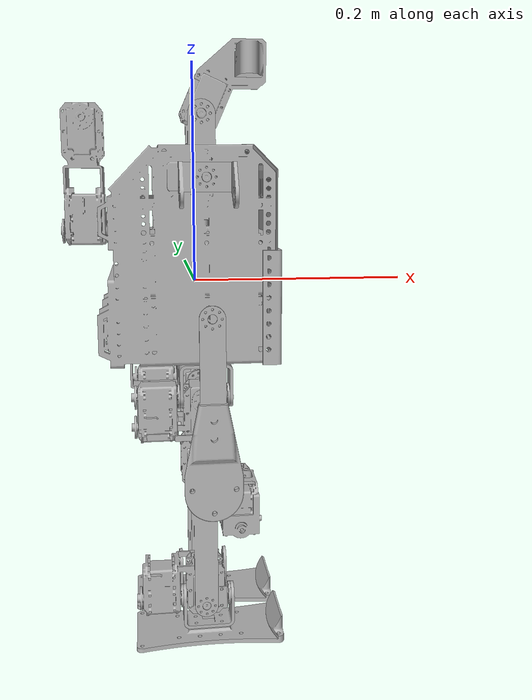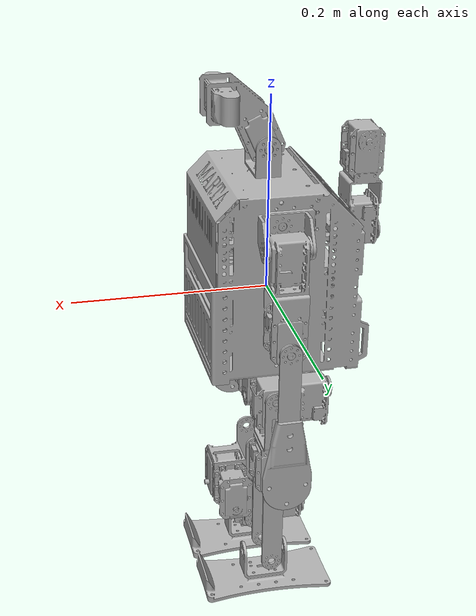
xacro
<?xml version="1.0" ?>
<robot name="martha" xmlns:xacro="http://www.ros.org/wiki/xacro">

<xacro:include filename="$(find martha_description)/urdf/materials.xacro" />
<xacro:include filename="$(find martha_description)/urdf/martha.trans" />
<xacro:include filename="$(find martha_description)/urdf/martha.gazebo" />
<xacro:include filename="$(find martha_description)/urdf/camera.xacro" />
<xacro:include filename="$(find martha_description)/urdf/IMU.xacro" />

<link name="base_link">
  <inertial>
    <origin xyz="-0.0006630369776697198 -0.009768004657093142 0.08921407799120112" rpy="0 0 0"/>
    <mass value="1.7871284905258538"/>
    <inertia ixx="0.008986" iyy="0.009333" izz="0.005235" ixy="0.000105" iyz="9.3e-05" ixz="-8.4e-05"/>
  </inertial>
  <visual>
    <origin xyz="0 0 0" rpy="0 0 0"/>
    <geometry>
      <mesh filename="package://martha_description/meshes/base_link.stl" scale="0.001 0.001 0.001"/>
    </geometry>
    <material name="silver"/>
  </visual>
  <collision>
    <origin xyz="0 0 0" rpy="0 0 0"/>
    <geometry>
      <mesh filename="package://martha_description/meshes/base_link.stl" scale="0.001 0.001 0.001"/>
    </geometry>
  </collision>
</link>

<link name="r_shoulder_1">
  <inertial>
    <origin xyz="-0.01031281894625595 1.006563130415139e-07 -0.003392181082860851" rpy="0 0 0"/>
    <mass value="0.06160861853585967"/>
    <inertia ixx="2.9e-05" iyy="1.1e-05" izz="2.9e-05" ixy="-0.0" iyz="0.0" ixz="-2e-06"/>
  </inertial>
  <visual>
    <origin xyz="0.075737 0.013299 -0.16273" rpy="0 0 0"/>
    <geometry>
      <mesh filename="package://martha_description/meshes/r_shoulder_1.stl" scale="0.001 0.001 0.001"/>
    </geometry>
    <material name="silver"/>
  </visual>
  <collision>
    <origin xyz="0.075737 0.013299 -0.16273" rpy="0 0 0"/>
    <geometry>
      <mesh filename="package://martha_description/meshes/r_shoulder_1.stl" scale="0.001 0.001 0.001"/>
    </geometry>
  </collision>
</link>

<link name="l_shoulder_1">
  <inertial>
    <origin xyz="0.010312334877242826 1.0065631233721617e-07 -0.003392181082860518" rpy="0 0 0"/>
    <mass value="0.06160861853585967"/>
    <inertia ixx="2.9e-05" iyy="1.1e-05" izz="2.9e-05" ixy="-0.0" iyz="-0.0" ixz="2e-06"/>
  </inertial>
  <visual>
    <origin xyz="-0.075763 0.013299 -0.16273" rpy="0 0 0"/>
    <geometry>
      <mesh filename="package://martha_description/meshes/l_shoulder_1.stl" scale="0.001 0.001 0.001"/>
    </geometry>
    <material name="silver"/>
  </visual>
  <collision>
    <origin xyz="-0.075763 0.013299 -0.16273" rpy="0 0 0"/>
    <geometry>
      <mesh filename="package://martha_description/meshes/l_shoulder_1.stl" scale="0.001 0.001 0.001"/>
    </geometry>
  </collision>
</link>

<link name="r_arm_1">
  <inertial>
    <origin xyz="1.9347228869107114e-05 -0.020734437734457503 -0.04912725845579294" rpy="0 0 0"/>
    <mass value="0.2020617023521814"/>
    <inertia ixx="0.000302" iyy="0.000302" izz="3.9e-05" ixy="0.0" iyz="-1e-06" ixz="1e-06"/>
  </inertial>
  <visual>
    <origin xyz="0.098737 -0.007701 -0.14823" rpy="0 0 0"/>
    <geometry>
      <mesh filename="package://martha_description/meshes/r_arm_1.stl" scale="0.001 0.001 0.001"/>
    </geometry>
    <material name="silver"/>
  </visual>
  <collision>
    <origin xyz="0.098737 -0.007701 -0.14823" rpy="0 0 0"/>
    <geometry>
      <mesh filename="package://martha_description/meshes/r_arm_1.stl" scale="0.001 0.001 0.001"/>
    </geometry>
  </collision>
</link>

<link name="l_arm_1">
  <inertial>
    <origin xyz="1.934722886826057e-05 -0.020734437734458534 -0.049127258455792466" rpy="0 0 0"/>
    <mass value="0.2020617023521814"/>
    <inertia ixx="0.000302" iyy="0.000302" izz="3.9e-05" ixy="0.0" iyz="-1e-06" ixz="1e-06"/>
  </inertial>
  <visual>
    <origin xyz="-0.098763 -0.007701 -0.14823" rpy="0 0 0"/>
    <geometry>
      <mesh filename="package://martha_description/meshes/l_arm_1.stl" scale="0.001 0.001 0.001"/>
    </geometry>
    <material name="silver"/>
  </visual>
  <collision>
    <origin xyz="-0.098763 -0.007701 -0.14823" rpy="0 0 0"/>
    <geometry>
      <mesh filename="package://martha_description/meshes/l_arm_1.stl" scale="0.001 0.001 0.001"/>
    </geometry>
  </collision>
</link>

<link name="neck_1">
  <inertial>
    <origin xyz="-2.5755466409639717e-07 1.0065631294436939e-07 0.011845617124302071" rpy="0 0 0"/>
    <mass value="0.020000175779140178"/>
    <inertia ixx="4e-06" iyy="1e-05" izz="8e-06" ixy="-0.0" iyz="-0.0" ixz="-0.0"/>
  </inertial>
  <visual>
    <origin xyz="-1.3e-05 0.013499 -0.191301" rpy="0 0 0"/>
    <geometry>
      <mesh filename="package://martha_description/meshes/neck_1.stl" scale="0.001 0.001 0.001"/>
    </geometry>
    <material name="silver"/>
  </visual>
  <collision>
    <origin xyz="-1.3e-05 0.013499 -0.191301" rpy="0 0 0"/>
    <geometry>
      <mesh filename="package://martha_description/meshes/neck_1.stl" scale="0.001 0.001 0.001"/>
    </geometry>
  </collision>
</link>

<link name="head_1">
  <inertial>
    <origin xyz="-0.020725854293897734 -0.023195347929327943 0.027449395978563967" rpy="0 0 0"/>
    <mass value="0.16224455137688537"/>
    <inertia ixx="0.000142" iyy="0.000129" izz="0.000132" ixy="-0.0" iyz="6e-05" ixz="0.0"/>
  </inertial>
  <visual>
    <origin xyz="-0.021013 0.013499 -0.220301" rpy="0 0 0"/>
    <geometry>
      <mesh filename="package://martha_description/meshes/head_1.stl" scale="0.001 0.001 0.001"/>
    </geometry>
    <material name="silver"/>
  </visual>
  <collision>
    <origin xyz="-0.021013 0.013499 -0.220301" rpy="0 0 0"/>
    <geometry>
      <mesh filename="package://martha_description/meshes/head_1.stl" scale="0.001 0.001 0.001"/>
    </geometry>
  </collision>
</link>

<link name="l_hand_1">
  <inertial>
    <origin xyz="0.0009997579654939942 1.0065629232024198e-07 -0.05155814136788923" rpy="0 0 0"/>
    <mass value="0.021001330912574206"/>
    <inertia ixx="2.4e-05" iyy="2.3e-05" izz="1e-06" ixy="0.0" iyz="0.0" ixz="0.0"/>
  </inertial>
  <visual>
    <origin xyz="-0.119513 0.013059 -0.04863" rpy="0 0 0"/>
    <geometry>
      <mesh filename="package://martha_description/meshes/l_hand_1.stl" scale="0.001 0.001 0.001"/>
    </geometry>
    <material name="silver"/>
  </visual>
  <collision>
    <origin xyz="-0.119513 0.013059 -0.04863" rpy="0 0 0"/>
    <geometry>
      <mesh filename="package://martha_description/meshes/l_hand_1.stl" scale="0.001 0.001 0.001"/>
    </geometry>
  </collision>
</link>

<link name="r_hand_1">
  <inertial>
    <origin xyz="-0.0010002420345059243 1.006563326161336e-07 -0.05155814136788962" rpy="0 0 0"/>
    <mass value="0.021001330912574206"/>
    <inertia ixx="2.4e-05" iyy="2.3e-05" izz="1e-06" ixy="0.0" iyz="-0.0" ixz="-0.0"/>
  </inertial>
  <visual>
    <origin xyz="0.119487 0.013059 -0.04863" rpy="0 0 0"/>
    <geometry>
      <mesh filename="package://martha_description/meshes/r_hand_1.stl" scale="0.001 0.001 0.001"/>
    </geometry>
    <material name="silver"/>
  </visual>
  <collision>
    <origin xyz="0.119487 0.013059 -0.04863" rpy="0 0 0"/>
    <geometry>
      <mesh filename="package://martha_description/meshes/r_hand_1.stl" scale="0.001 0.001 0.001"/>
    </geometry>
  </collision>
</link>

<link name="l_hip_1">
  <inertial>
    <origin xyz="-2.4203449114357234e-07 0.0014520580619134752 -0.0157857763718715" rpy="0 0 0"/>
    <mass value="0.02225889521246935"/>
    <inertia ixx="1.3e-05" iyy="5e-06" izz="1e-05" ixy="0.0" iyz="1e-06" ixz="0.0"/>
  </inertial>
  <visual>
    <origin xyz="-0.040013 0.013499 0.00575" rpy="0 0 0"/>
    <geometry>
      <mesh filename="package://martha_description/meshes/l_hip_1.stl" scale="0.001 0.001 0.001"/>
    </geometry>
    <material name="silver"/>
  </visual>
  <collision>
    <origin xyz="-0.040013 0.013499 0.00575" rpy="0 0 0"/>
    <geometry>
      <mesh filename="package://martha_description/meshes/l_hip_1.stl" scale="0.001 0.001 0.001"/>
    </geometry>
  </collision>
</link>

<link name="r_hip_1">
  <inertial>
    <origin xyz="-2.420344911782668e-07 0.0014520580619137562 -0.015785776371871493" rpy="0 0 0"/>
    <mass value="0.02225889521246935"/>
    <inertia ixx="1.3e-05" iyy="5e-06" izz="1e-05" ixy="0.0" iyz="1e-06" ixz="0.0"/>
  </inertial>
  <visual>
    <origin xyz="0.039987 0.013499 0.00575" rpy="0 0 0"/>
    <geometry>
      <mesh filename="package://martha_description/meshes/r_hip_1.stl" scale="0.001 0.001 0.001"/>
    </geometry>
    <material name="silver"/>
  </visual>
  <collision>
    <origin xyz="0.039987 0.013499 0.00575" rpy="0 0 0"/>
    <geometry>
      <mesh filename="package://martha_description/meshes/r_hip_1.stl" scale="0.001 0.001 0.001"/>
    </geometry>
  </collision>
</link>

<link name="l_waist_1">
  <inertial>
    <origin xyz="1.356126801182328e-05 -0.001402000274064499 -0.012377754296471102" rpy="0 0 0"/>
    <mass value="0.1875670107851206"/>
    <inertia ixx="0.000141" iyy="5.5e-05" izz="0.000124" ixy="0.0" iyz="-0.0" ixz="0.0"/>
  </inertial>
  <visual>
    <origin xyz="-0.040013 -0.008651 0.03975" rpy="0 0 0"/>
    <geometry>
      <mesh filename="package://martha_description/meshes/l_waist_1.stl" scale="0.001 0.001 0.001"/>
    </geometry>
    <material name="silver"/>
  </visual>
  <collision>
    <origin xyz="-0.040013 -0.008651 0.03975" rpy="0 0 0"/>
    <geometry>
      <mesh filename="package://martha_description/meshes/l_waist_1.stl" scale="0.001 0.001 0.001"/>
    </geometry>
  </collision>
</link>

<link name="r_waist_1">
  <inertial>
    <origin xyz="1.356126801182328e-05 -0.0014020002740642136 -0.012377754296471102" rpy="0 0 0"/>
    <mass value="0.1875670107851206"/>
    <inertia ixx="0.000141" iyy="5.5e-05" izz="0.000124" ixy="0.0" iyz="-0.0" ixz="0.0"/>
  </inertial>
  <visual>
    <origin xyz="0.039987 -0.008651 0.03975" rpy="0 0 0"/>
    <geometry>
      <mesh filename="package://martha_description/meshes/r_waist_1.stl" scale="0.001 0.001 0.001"/>
    </geometry>
    <material name="silver"/>
  </visual>
  <collision>
    <origin xyz="0.039987 -0.008651 0.03975" rpy="0 0 0"/>
    <geometry>
      <mesh filename="package://martha_description/meshes/r_waist_1.stl" scale="0.001 0.001 0.001"/>
    </geometry>
  </collision>
</link>

<link name="r_thigh_1">
  <inertial>
    <origin xyz="0.02307735441395943 1.0318458368990813e-07 -0.07554784992266037" rpy="0 0 0"/>
    <mass value="0.11557705181109862"/>
    <inertia ixx="9.9e-05" iyy="0.000113" izz="2.7e-05" ixy="0.0" iyz="0.0" ixz="0.0"/>
  </inertial>
  <visual>
    <origin xyz="0.062587 0.010799 0.03975" rpy="0 0 0"/>
    <geometry>
      <mesh filename="package://martha_description/meshes/r_thigh_1.stl" scale="0.001 0.001 0.001"/>
    </geometry>
    <material name="silver"/>
  </visual>
  <collision>
    <origin xyz="0.062587 0.010799 0.03975" rpy="0 0 0"/>
    <geometry>
      <mesh filename="package://martha_description/meshes/r_thigh_1.stl" scale="0.001 0.001 0.001"/>
    </geometry>
  </collision>
</link>

<link name="l_thigh_1">
  <inertial>
    <origin xyz="0.023077354413963403 1.0318458338112735e-07 -0.07554784992265909" rpy="0 0 0"/>
    <mass value="0.11557705181109862"/>
    <inertia ixx="9.9e-05" iyy="0.000113" izz="2.7e-05" ixy="0.0" iyz="0.0" ixz="0.0"/>
  </inertial>
  <visual>
    <origin xyz="-0.017413 0.010799 0.03975" rpy="0 0 0"/>
    <geometry>
      <mesh filename="package://martha_description/meshes/l_thigh_1.stl" scale="0.001 0.001 0.001"/>
    </geometry>
    <material name="silver"/>
  </visual>
  <collision>
    <origin xyz="-0.017413 0.010799 0.03975" rpy="0 0 0"/>
    <geometry>
      <mesh filename="package://martha_description/meshes/l_thigh_1.stl" scale="0.001 0.001 0.001"/>
    </geometry>
  </collision>
</link>

<link name="l_shin_1">
  <inertial>
    <origin xyz="0.020749757857182218 -0.003248346965796862 -0.055792340756745856" rpy="0 0 0"/>
    <mass value="0.035815952853816696"/>
    <inertia ixx="4.9e-05" iyy="6.2e-05" izz="1.8e-05" ixy="0.0" iyz="2e-06" ixz="0.0"/>
  </inertial>
  <visual>
    <origin xyz="-0.019763 0.010799 0.14025" rpy="0 0 0"/>
    <geometry>
      <mesh filename="package://martha_description/meshes/l_shin_1.stl" scale="0.001 0.001 0.001"/>
    </geometry>
    <material name="silver"/>
  </visual>
  <collision>
    <origin xyz="-0.019763 0.010799 0.14025" rpy="0 0 0"/>
    <geometry>
      <mesh filename="package://martha_description/meshes/l_shin_1.stl" scale="0.001 0.001 0.001"/>
    </geometry>
  </collision>
</link>

<link name="r_shin_1">
  <inertial>
    <origin xyz="0.020749757857178246 -0.0032483469657965548 -0.055792340756745384" rpy="0 0 0"/>
    <mass value="0.035815952853816696"/>
    <inertia ixx="4.9e-05" iyy="6.2e-05" izz="1.8e-05" ixy="0.0" iyz="2e-06" ixz="0.0"/>
  </inertial>
  <visual>
    <origin xyz="0.060237 0.010799 0.14025" rpy="0 0 0"/>
    <geometry>
      <mesh filename="package://martha_description/meshes/r_shin_1.stl" scale="0.001 0.001 0.001"/>
    </geometry>
    <material name="silver"/>
  </visual>
  <collision>
    <origin xyz="0.060237 0.010799 0.14025" rpy="0 0 0"/>
    <geometry>
      <mesh filename="package://martha_description/meshes/r_shin_1.stl" scale="0.001 0.001 0.001"/>
    </geometry>
  </collision>
</link>

<link name="r_ankle_1">
  <inertial>
    <origin xyz="-0.022614045337022687 0.018047999724888516 0.012378173071369125" rpy="0 0 0"/>
    <mass value="0.1875670107851206"/>
    <inertia ixx="0.000141" iyy="5.5e-05" izz="0.000124" ixy="-0.0" iyz="0.0" ixz="0.0"/>
  </inertial>
  <visual>
    <origin xyz="0.016887 0.010799 0.240275" rpy="0 0 0"/>
    <geometry>
      <mesh filename="package://martha_description/meshes/r_ankle_1.stl" scale="0.001 0.001 0.001"/>
    </geometry>
    <material name="silver"/>
  </visual>
  <collision>
    <origin xyz="0.016887 0.010799 0.240275" rpy="0 0 0"/>
    <geometry>
      <mesh filename="package://martha_description/meshes/r_ankle_1.stl" scale="0.001 0.001 0.001"/>
    </geometry>
  </collision>
</link>

<link name="l_ankle_1">
  <inertial>
    <origin xyz="-0.022614045337019446 0.018047999724888176 0.012378173071368598" rpy="0 0 0"/>
    <mass value="0.1875670107851206"/>
    <inertia ixx="0.000141" iyy="5.5e-05" izz="0.000124" ixy="-0.0" iyz="0.0" ixz="0.0"/>
  </inertial>
  <visual>
    <origin xyz="-0.063113 0.010799 0.240275" rpy="0 0 0"/>
    <geometry>
      <mesh filename="package://martha_description/meshes/l_ankle_1.stl" scale="0.001 0.001 0.001"/>
    </geometry>
    <material name="silver"/>
  </visual>
  <collision>
    <origin xyz="-0.063113 0.010799 0.240275" rpy="0 0 0"/>
    <geometry>
      <mesh filename="package://martha_description/meshes/l_ankle_1.stl" scale="0.001 0.001 0.001"/>
    </geometry>
  </collision>
</link>

<link name="l_feet_1">
  <inertial>
    <origin xyz="-2.4862835438371755e-07 0.014015228874382377 -0.03218634292185488" rpy="0 0 0"/>
    <mass value="0.07003381761423272"/>
    <inertia ixx="0.000114" iyy="2.5e-05" izz="0.000121" ixy="-0.0" iyz="1e-06" ixz="-0.0"/>
  </inertial>
  <visual>
    <origin xyz="-0.040513 0.033499 0.240275" rpy="0 0 0"/>
    <geometry>
      <mesh filename="package://martha_description/meshes/l_feet_1.stl" scale="0.001 0.001 0.001"/>
    </geometry>
    <material name="silver"/>
  </visual>
  <collision>
    <origin xyz="-0.040513 0.033499 0.240275" rpy="0 0 0"/>
    <geometry>
      <mesh filename="package://martha_description/meshes/l_feet_1.stl" scale="0.001 0.001 0.001"/>
    </geometry>
  </collision>
</link>

<link name="r_feet_1">
  <inertial>
    <origin xyz="-2.486283565833469e-07 0.014015228874382713 -0.03218634292185443" rpy="0 0 0"/>
    <mass value="0.07003381761423272"/>
    <inertia ixx="0.000114" iyy="2.5e-05" izz="0.000121" ixy="-0.0" iyz="1e-06" ixz="-0.0"/>
  </inertial>
  <visual>
    <origin xyz="0.039487 0.033499 0.240275" rpy="0 0 0"/>
    <geometry>
      <mesh filename="package://martha_description/meshes/r_feet_1.stl" scale="0.001 0.001 0.001"/>
    </geometry>
    <material name="silver"/>
  </visual>
  <collision>
    <origin xyz="0.039487 0.033499 0.240275" rpy="0 0 0"/>
    <geometry>
      <mesh filename="package://martha_description/meshes/r_feet_1.stl" scale="0.001 0.001 0.001"/>
    </geometry>
  </collision>
</link>

<joint name="r_sho_pitch_link" type="revolute">
  <origin xyz="-0.075737 -0.013299 0.16273" rpy="0 0 0"/>
  <parent link="base_link"/>
  <child link="r_shoulder_1"/>
  <axis xyz="-1.0 0.0 0.0"/>
  <limit lower="-3.14159" upper="3.14159" effort="1000.0" velocity="0.01"/>
</joint>

<joint name="l_sho_pitch_link" type="revolute">
  <origin xyz="0.075763 -0.013299 0.16273" rpy="0 0 0"/>
  <parent link="base_link"/>
  <child link="l_shoulder_1"/>
  <axis xyz="1.0 -0.0 0.0"/>
  <limit lower="-3.14159" upper="3.14159" effort="1000.0" velocity="0.01"/>
</joint>

<joint name="r_sho_roll_link" type="revolute">
  <origin xyz="-0.023 0.021 -0.0145" rpy="0 0 0"/>
  <parent link="r_shoulder_1"/>
  <child link="r_arm_1"/>
  <axis xyz="0.0 1.0 0.0"/>
  <limit lower="-3.14159" upper="3.14159" effort="1000.0" velocity="0.01"/>
</joint>

<joint name="l_sho_roll_link" type="revolute">
  <origin xyz="0.023 0.021 -0.0145" rpy="0 0 0"/>
  <parent link="l_shoulder_1"/>
  <child link="l_arm_1"/>
  <axis xyz="0.0 1.0 -0.0"/>
  <limit lower="-3.14159" upper="3.14159" effort="1000.0" velocity="0.01"/>
</joint>

<joint name="head_pan_link" type="revolute">
  <origin xyz="1.3e-05 -0.013499 0.191301" rpy="0 0 0"/>
  <parent link="base_link"/>
  <child link="neck_1"/>
  <axis xyz="0.0 0.0 1.0"/>
  <limit lower="-3.14159" upper="3.14159" effort="1000.0" velocity="0.01"/>
</joint>

<joint name="head_tilt_link" type="revolute">
  <origin xyz="0.021 0.0 0.029" rpy="0 0 0"/>
  <parent link="neck_1"/>
  <child link="head_1"/>
  <axis xyz="1.0 -0.0 -0.0"/>
  <limit lower="-3.14159" upper="3.14159" effort="1000.0" velocity="0.01"/>
</joint>

<joint name="l_el_link" type="revolute">
  <origin xyz="0.02075 -0.02076 -0.0996" rpy="0 0 0"/>
  <parent link="l_arm_1"/>
  <child link="l_hand_1"/>
  <axis xyz="1.0 0.0 0.0"/>
  <limit lower="-3.14159" upper="3.14159" effort="1000.0" velocity="0.01"/>
</joint>

<joint name="r_el_link" type="revolute">
  <origin xyz="-0.02075 -0.02076 -0.0996" rpy="0 0 0"/>
  <parent link="r_arm_1"/>
  <child link="r_hand_1"/>
  <axis xyz="1.0 -0.0 -0.0"/>
  <limit lower="-3.14159" upper="3.14159" effort="1000.0" velocity="0.01"/>
</joint>

<joint name="l_hip_yaw_link" type="revolute">
  <origin xyz="0.040013 -0.013499 -0.00575" rpy="0 0 0"/>
  <parent link="base_link"/>
  <child link="l_hip_1"/>
  <axis xyz="-0.0 -0.0 -1.0"/>
  <limit lower="-3.14159" upper="3.14159" effort="1000.0" velocity="0.01"/>
</joint>

<joint name="r_hip_yaw_link" type="revolute">
  <origin xyz="-0.039987 -0.013499 -0.00575" rpy="0 0 0"/>
  <parent link="base_link"/>
  <child link="r_hip_1"/>
  <axis xyz="-0.0 -0.0 -1.0"/>
  <limit lower="-3.14159" upper="3.14159" effort="1000.0" velocity="0.01"/>
</joint>

<joint name="l_hip_roll_link" type="revolute">
  <origin xyz="0.0 0.02215 -0.034" rpy="0 0 0"/>
  <parent link="l_hip_1"/>
  <child link="l_waist_1"/>
  <axis xyz="0.0 -1.0 0.0"/>
  <limit lower="-3.14159" upper="3.14159" effort="1000.0" velocity="0.01"/>
</joint>

<joint name="r_hip_roll_link" type="revolute">
  <origin xyz="0.0 0.02215 -0.034" rpy="0 0 0"/>
  <parent link="r_hip_1"/>
  <child link="r_waist_1"/>
  <axis xyz="-0.0 -1.0 0.0"/>
  <limit lower="-3.14159" upper="3.14159" effort="1000.0" velocity="0.01"/>
</joint>

<joint name="r_hip_pitch_link" type="revolute">
  <origin xyz="-0.0226 -0.01945 0.0" rpy="0 0 0"/>
  <parent link="r_waist_1"/>
  <child link="r_thigh_1"/>
  <axis xyz="1.0 0.0 0.0"/>
  <limit lower="-3.14159" upper="3.14159" effort="1000.0" velocity="0.01"/>
</joint>

<joint name="l_hip_pitch_link" type="revolute">
  <origin xyz="-0.0226 -0.01945 0.0" rpy="0 0 0"/>
  <parent link="l_waist_1"/>
  <child link="l_thigh_1"/>
  <axis xyz="1.0 0.0 0.0"/>
  <limit lower="-3.14159" upper="3.14159" effort="1000.0" velocity="0.01"/>
</joint>

<joint name="l_knee_link" type="revolute">
  <origin xyz="0.00235 0.0 -0.1005" rpy="0 0 0"/>
  <parent link="l_thigh_1"/>
  <child link="l_shin_1"/>
  <axis xyz="-1.0 -0.0 -0.0"/>
  <limit lower="-3.14159" upper="3.14159" effort="1000.0" velocity="0.01"/>
</joint>

<joint name="r_knee_link" type="revolute">
  <origin xyz="0.00235 0.0 -0.1005" rpy="0 0 0"/>
  <parent link="r_thigh_1"/>
  <child link="r_shin_1"/>
  <axis xyz="-1.0 -0.0 -0.0"/>
  <limit lower="-3.14159" upper="3.14159" effort="1000.0" velocity="0.01"/>
</joint>

<joint name="r_ank_pitch_link" type="revolute">
  <origin xyz="0.04335 0.0 -0.100025" rpy="0 0 0"/>
  <parent link="r_shin_1"/>
  <child link="r_ankle_1"/>
  <axis xyz="1.0 0.0 0.0"/>
  <limit lower="-3.14159" upper="3.14159" effort="1000.0" velocity="0.01"/>
</joint>

<joint name="l_ank_pitch_link" type="revolute">
  <origin xyz="0.04335 0.0 -0.100025" rpy="0 0 0"/>
  <parent link="l_shin_1"/>
  <child link="l_ankle_1"/>
  <axis xyz="1.0 0.0 -0.0"/>
  <limit lower="-3.14159" upper="3.14159" effort="1000.0" velocity="0.01"/>
</joint>

<joint name="l_ank_roll_link" type="revolute">
  <origin xyz="-0.0226 -0.0227 0.0" rpy="0 0 0"/>
  <parent link="l_ankle_1"/>
  <child link="l_feet_1"/>
  <axis xyz="0.0 -1.0 0.0"/>
  <limit lower="-3.14159" upper="3.14159" effort="1000.0" velocity="0.01"/>
</joint>

<joint name="r_ank_roll_link" type="revolute">
  <origin xyz="-0.0226 -0.0227 0.0" rpy="0 0 0"/>
  <parent link="r_ankle_1"/>
  <child link="r_feet_1"/>
  <axis xyz="0.0 -1.0 0.0"/>
  <limit lower="-3.14159" upper="3.14159" effort="1000.0" velocity="0.01"/>
</joint>

<xacro:imu_sensor parent="base_link" ns="martha" origin="0 0 0 0 0 0"/>

<xacro:camera_sensor parent="cabeca_1" camera_name="front_camera" ns="martha" origin="-0.02060 -0.050864 0.047202 0 0 -1.57"/>

</robot>

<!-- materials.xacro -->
<robot name="martha" xmlns:xacro="http://www.ros.org/wiki/xacro" >

<material name="silver">
  <color rgba="0.700 0.700 0.700 1.000"/>
</material>

</robot>

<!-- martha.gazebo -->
<robot name="martha" xmlns:xacro="http://www.ros.org/wiki/xacro" >

<xacro:property name="body_color" value="Gazebo/Silver" />

<gazebo>
  <plugin name="control" filename="libgazebo_ros_control.so"/>
</gazebo>
<gazebo reference="base_link">
  <material>${body_color}</material>
  <mu1>500</mu1>
  <mu2>400</mu2>
  <selfCollide>false</selfCollide>
  <gravity>true</gravity>
</gazebo>

<gazebo reference="r_shoulder_1">
  <material>${body_color}</material>
  <mu1>500</mu1>
  <mu2>400</mu2>
  <selfCollide>false</selfCollide>
</gazebo>

<gazebo reference="l_shoulder_1">
  <material>${body_color}</material>
  <mu1>500</mu1>
  <mu2>400</mu2>
  <selfCollide>false</selfCollide>
</gazebo>

<gazebo reference="r_arm_1">
  <material>${body_color}</material>
  <mu1>500</mu1>
  <mu2>400</mu2>
  <selfCollide>false</selfCollide>
</gazebo>

<gazebo reference="l_arm_1">
  <material>${body_color}</material>
  <mu1>500</mu1>
  <mu2>400</mu2>
  <selfCollide>false</selfCollide>
</gazebo>

<gazebo reference="neck_1">
  <material>${body_color}</material>
  <mu1>500</mu1>
  <mu2>400</mu2>
  <selfCollide>false</selfCollide>
</gazebo>

<gazebo reference="head_1">
  <material>${body_color}</material>
  <mu1>500</mu1>
  <mu2>400</mu2>
  <selfCollide>false</selfCollide>
</gazebo>

<gazebo reference="l_hand_1">
  <material>${body_color}</material>
  <mu1>500</mu1>
  <mu2>400</mu2>
  <selfCollide>false</selfCollide>
</gazebo>

<gazebo reference="r_hand_1">
  <material>${body_color}</material>
  <mu1>500</mu1>
  <mu2>400</mu2>
  <selfCollide>false</selfCollide>
</gazebo>

<gazebo reference="l_hip_1">
  <material>${body_color}</material>
  <mu1>500</mu1>
  <mu2>400</mu2>
  <selfCollide>false</selfCollide>
</gazebo>

<gazebo reference="r_hip_1">
  <material>${body_color}</material>
  <mu1>500</mu1>
  <mu2>400</mu2>
  <selfCollide>false</selfCollide>
</gazebo>

<gazebo reference="l_waist_1">
  <material>${body_color}</material>
  <mu1>500</mu1>
  <mu2>400</mu2>
  <selfCollide>false</selfCollide>
</gazebo>

<gazebo reference="r_waist_1">
  <material>${body_color}</material>
  <mu1>500</mu1>
  <mu2>400</mu2>
  <selfCollide>false</selfCollide>
</gazebo>

<gazebo reference="r_thigh_1">
  <material>${body_color}</material>
  <mu1>500</mu1>
  <mu2>400</mu2>
  <selfCollide>false</selfCollide>
</gazebo>

<gazebo reference="l_thigh_1">
  <material>${body_color}</material>
  <mu1>500</mu1>
  <mu2>400</mu2>
  <selfCollide>false</selfCollide>
</gazebo>

<gazebo reference="l_shin_1">
  <material>${body_color}</material>
  <mu1>500</mu1>
  <mu2>400</mu2>
  <selfCollide>false</selfCollide>
</gazebo>

<gazebo reference="r_shin_1">
  <material>${body_color}</material>
  <mu1>500</mu1>
  <mu2>400</mu2>
  <selfCollide>false</selfCollide>
</gazebo>

<gazebo reference="r_ankle_1">
  <material>${body_color}</material>
  <mu1>500</mu1>
  <mu2>400</mu2>
  <selfCollide>false</selfCollide>
</gazebo>

<gazebo reference="l_ankle_1">
  <material>${body_color}</material>
  <mu1>500</mu1>
  <mu2>400</mu2>
  <selfCollide>false</selfCollide>
</gazebo>

<gazebo reference="l_feet_1">
  <material>${body_color}</material>
  <mu1>500</mu1>
  <mu2>400</mu2>
  <selfCollide>false</selfCollide>
</gazebo>

<gazebo reference="r_feet_1">
  <material>${body_color}</material>
  <mu1>500</mu1>
  <mu2>400</mu2>
  <selfCollide>false</selfCollide>
</gazebo>

</robot>
